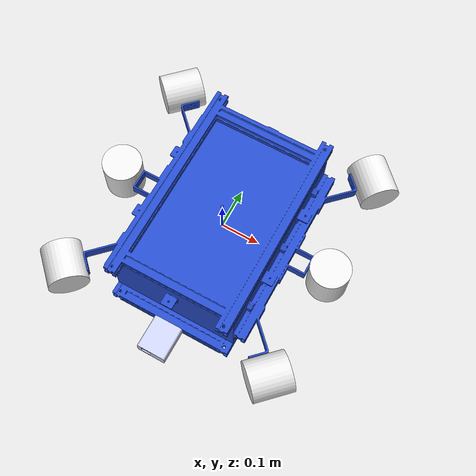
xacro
<?xml version="1.0" encoding="utf-8"?>

<robot name="vec6" xmlns:xacro="http://www.ros.org/wiki/xacro">

  <xacro:property name="cam_origin_offset" value="0 0 0"/>
  <xacro:property name="camera_dimensions" value="0.01 0.01 0.01"/>

  <xacro:property name="depth_origin_offset" value="0 0 0.11"/>
  <xacro:property name="depth_dimensions" value="0.005 0.005 0.002"/>

  <xacro:property name="imu_origin_offset" value="0 0 0"/>
  <xacro:property name="imu_dimensions" value="0.005 0.005 0.002"/>

  <!-- Dummy thruster links to define position of the thrusters -->
  <!-- Input parameters: Thruster name and pose of the joint -->
  <xacro:macro name="thruster_link" params="name xyz rpy">

    <link name="${name}">
			<visual>
			  <origin
				xyz="0 0 0"
				rpy="${rpy}" />
			  <geometry>
				<mesh
				  filename="package://uwv_description/meshes/vec6/vec6_thruster_visual.STL" />
			  </geometry>
			</visual>
			<collision>
			  <origin
				xyz="0 0 0"
				rpy="${rpy}" />
			  <geometry>
          <mesh
            filename="package://uwv_description/meshes/vec6/vec6_thruster_collision.STL" />
			  </geometry>
			</collision>
        <buoyancy>
          <compensation>
            1.0
          </compensation>
			</buoyancy>
    </link>

    <joint name="${name}_joint" type="fixed">
      <parent link="vec6_base_link"/>
      <child link="${name}"/>
      <origin rpy="0 0 0" xyz="${xyz}"/>
    </joint>

    <gazebo reference="${name}">
			<material>Gazebo/White</material>
		</gazebo>
  </xacro:macro>

  <!-- Gazebo plugin for buoyancy -->
  <gazebo>
	  <plugin name="freefloating_gazebo_control" filename="libfreefloating_gazebo_control.so">
      <switchService>switch</switchService>
      <updateRate>100</updateRate>
      <link>vec6_base_link</link>

      <!-- for each thruster, give the map to XYZ+RPY and the maximum effort -->
      <thruster>
        <effort>40</effort>
        <name>f_port</name>
        <map>-0.25 -0.25 0 0 0 -0.25</map>
      </thruster>
      <thruster>
        <effort>40</effort>
        <name>f_star</name>
        <map>0.25 -0.25 0 0 0 0.25</map>
      </thruster>
      <thruster>
        <effort>40</effort>
        <name>m_port</name>
        <map>0 0 -1 0 0 0</map>
        </thruster>
      <thruster>
        <effort>40</effort>
        <name>m_star</name>
        <map>>0 0 -1 0 0 0</map>
      </thruster>
      <thruster>
        <effort>40</effort>
        <name>b_port</name>
        <map>0.25 -0.25 0 0 0 -0.25</map>
      </thruster>
      <thruster>
        <effort>40</effort>
        <name>b_star</name>
        <map>-0.25 -0.25 0 0 0 0.25</map>
      </thruster>

	  </plugin>
  </gazebo>

  <!-- Ground truth publisher plugin -->
  <gazebo>
    <plugin name="p3d_base_controller" filename="libgazebo_ros_p3d.so">
      <alwaysOn>true</alwaysOn>
      <updateRate>50.0</updateRate>
      <bodyName>vec6_base_link</bodyName>
      <topicName>/vec6/sim_ground_truth</topicName>
      <gaussianNoise>0.0</gaussianNoise>
      <frameName>world</frameName>
      <xyzOffsets>0 0 0</xyzOffsets>
      <rpyOffsets>0 0 0</rpyOffsets>
    </plugin>
  </gazebo>

  <!-- ros_control plugin -->
  <gazebo>
    <plugin name="gazebo_ros_control" filename="libgazebo_ros_control.so">
      <robotNamespace>/vec6</robotNamespace>
    </plugin>
  </gazebo>

  <!-- Bot body -->
  <link name="body_link">
    <visual>
      <origin
          xyz="0 0 0"
          rpy="0 0 0" />
      <geometry>
          <mesh
            filename="package://uwv_description/meshes/vec6/vec6_body_visual.STL"/>
      </geometry>
    </visual>
    <collision>
      <origin
        xyz="0 0.235 -0.019804"
        rpy="1.5708 0 0" />
      <geometry>
        <mesh filename="package://uwv_description/meshes/vec6/vec6_body_collision.STL" />
      </geometry>
    </collision>
    <buoyancy>
        <compensation>1</compensation>
    </buoyancy>
  </link>

  <link name="vec6_base_link">
    <inertial>
      <origin
        xyz="0 0 0"
        rpy="1.5708 0 0" />
      <mass
        value="22" />
      <inertia
        ixx="0.64227"
        ixy="0.0022152"
        ixz="0"
        iyy="1.0029"
        iyz="0"
        izz="0.52067" />
    </inertial>
    <buoyancy>
      <compensation>1.01</compensation>
      <origin xyz="0 0 0.5"/>
      <limit radius="0.05"/>
      <damping xyz="50 50 50" rpy="10 10 10" type="linear"/>
    </buoyancy>
  </link>

  <joint name="body_link_joint" type="fixed">
    <parent link="vec6_base_link"/>
    <child link="body_link"/>
    <origin
          xyz="0 -0.235 0.019804"
          rpy="0 0 0" />
  </joint>

  <gazebo reference="body_link">
		<material>Gazebo/Blue</material>
  </gazebo>

  <!-- Actuators: Thrusters -->
  <xacro:thruster_link name="f_star" xyz="-0.2714 -0.28343 0.0123" rpy="1.5708 0 -0.7854" />
  <xacro:thruster_link name="f_port" xyz="0.2714 -0.28343 0.0123" rpy="-1.5708 0 -2.35619449019235"/>
  <xacro:thruster_link name="m_star" xyz="-0.28715 0.0070482 0.009" rpy="0 -1.5708 0"/>
  <xacro:thruster_link name="m_port" xyz="0.28715 0.0070482 0.009" rpy="0 -1.5708 3.1416"/>
  <xacro:thruster_link name="b_star" xyz="-0.2714 0.28343 0.0123" rpy="-1.5708 0 0.7854"/>
  <xacro:thruster_link name="b_port" xyz="0.2714 0.28343 0.0123" rpy="-1.5708 3.1416 -0.7854"/>

  <!-- Sensor: Front Camera -->
  <link name="f_cam">
    <visual>
      <origin
        xyz="-0.09 0.015 -0.0152"
        rpy="0 1.5708 0" />
      <geometry>
        <mesh
          filename="package://uwv_description/meshes/vec6/vec6_camera.STL" />
      </geometry>
      <material
        name="">
        <color
          rgba="0.792156862745098 0.819607843137255 0.933333333333333 1" />
      </material>
    </visual>
    <collision>
      <origin
        xyz="-0.09 0.015 -0.0152"
        rpy="0 1.5708 0" />
      <geometry>
        <mesh
          filename="package://uwv_description/meshes/vec6/vec6_camera.STL" />
      </geometry>
    </collision>
  </link>
  <joint name="f_cam_joint" type="fixed">
    <origin
      xyz="-0.015 -0.355 -0.07"
      rpy="0 0 -1.5708" />
    <parent
      link="vec6_base_link" />
    <child
      link="f_cam" />
    <axis
      xyz="0 0 0" />
  </joint>

  <!-- Front Camera: Plugin -->
  <gazebo reference="f_cam">
	 <material>Gazebo/Red</material>
   <sensor type="camera" name="f_cam">
   <update_rate>30.0</update_rate>
   <camera name="f_cam_head">
        <horizontal_fov>1.3</horizontal_fov>
        <image>
          <width>640</width>
          <height>480</height>
          <format>R8G8B8</format>
        </image>
        <clip>
          <near>0.1</near>
          <far>30</far>
        </clip>
        <noise>
          <type>gaussian</type>
          <!-- Noise is sampled independently per pixel on each frame.
               That pixel's noise value is added to each of its color
               channels, which at that point lie in the range [0,1]. -->
          <mean>0.0</mean>
          <stddev>0.007</stddev>
        </noise>
    </camera>
    <plugin name="camera_controller" filename="libgazebo_ros_camera.so">
        <alwaysOn>true</alwaysOn>
        <updateRate>30.0</updateRate>
        <cameraName>f_cam</cameraName>
        <imageTopicName>image_raw</imageTopicName>
        <cameraInfoTopicName>camera_info</cameraInfoTopicName>
        <frameName>camera_link</frameName>
        <hackBaseline>0.07</hackBaseline>
        <distortionK1>0.01</distortionK1>
        <distortionK2>0.02</distortionK2>
        <distortionK3>0.01</distortionK3>
        <distortionT1>0.03</distortionT1>
        <distortionT2>0.04</distortionT2>
      </plugin>
    </sensor>
  </gazebo>

  <!-- Sensor: Down Camera -->
  <link name="d_cam">
    <collision>
      <origin xyz="${cam_origin_offset}" rpy="0 0 0"/>
      <geometry>
        <box size="${camera_dimensions}"/>
      </geometry>
    </collision>
    <visual>
      <origin xyz="${cam_origin_offset}" rpy="0 0 0"/>
      <geometry>
        <box size="${camera_dimensions}"/>
      </geometry>
      <material name="red"/>
    </visual>
    <inertial>
      <mass value="1e-5" />
      <origin xyz="0 0 0" rpy="0 0 0"/>
      <inertia ixx="1e-6" ixy="0" ixz="0" iyy="1e-6" iyz="0" izz="1e-6" />
    </inertial>
  </link>
  <joint name="d_cam_joint" type="fixed">
    <origin
      xyz="0 -0.255 -0.092"
      rpy="0 1.5708 -1.5708" />
    <parent
      link="vec6_base_link" />
    <child
      link="d_cam" />
    <axis
      xyz="0 0 0" />
  </joint>

  <!-- Down Camera: Plugin -->
  <gazebo reference="d_cam">
	 <material>Gazebo/Red</material>
   <sensor type="camera" name="d_cam">
   <update_rate>30.0</update_rate>
   <camera name="d_cam_head">
        <horizontal_fov>1.3</horizontal_fov>
        <image>
          <width>640</width>
          <height>480</height>
          <format>R8G8B8</format>
        </image>
        <clip>
          <near>0.1</near>
          <far>30</far>
        </clip>
        <noise>
          <type>gaussian</type>
          <!-- Noise is sampled independently per pixel on each frame.
               That pixel's noise value is added to each of its color
               channels, which at that point lie in the range [0,1]. -->
          <mean>0.0</mean>
          <stddev>0.007</stddev>
        </noise>
    </camera>
    <plugin name="camera_controller" filename="libgazebo_ros_camera.so">
        <alwaysOn>true</alwaysOn>
        <updateRate>0.0</updateRate>
        <cameraName>d_cam</cameraName>
        <imageTopicName>image_raw</imageTopicName>
        <cameraInfoTopicName>camera_info</cameraInfoTopicName>
        <frameName>camera_link</frameName>
        <hackBaseline>0.07</hackBaseline>
        <distortionK1>0.01</distortionK1>
        <distortionK2>0.02</distortionK2>
        <distortionK3>0.01</distortionK3>
        <distortionT1>0.03</distortionT1>
        <distortionT2>0.04</distortionT2>
      </plugin>
    </sensor>
  </gazebo>

  <!-- Depth sensor -->
  <link name="depth_sensor">
    <collision>
      <origin xyz="0 0 0" rpy="0 0 0"/>
      <geometry>
        <box size="${depth_dimensions}"/>
      </geometry>
    </collision>
    <visual>
      <origin xyz="0 0 0" rpy="0 0 0"/>
      <geometry>
        <box size="${depth_dimensions}"/>
      </geometry>
      <material name="blue"/>
    </visual>
    <inertial>
      <mass value="1e-5" />
      <origin xyz="0 0 0" rpy="0 0 0"/>
      <inertia ixx="1e-6" ixy="0" ixz="0" iyy="1e-6" iyz="0" izz="1e-6" />
    </inertial>
  </link>
  <joint name="depth_sensor_joint" type="fixed">
    <origin xyz="${depth_origin_offset}" rpy="0 0 0"/>
    <parent link="vec6_base_link"/>
    <child link="depth_sensor"/>
  </joint>
  <gazebo reference="depth_sensor">
	  <material>Gazebo/Green</material>
  </gazebo>

  <!-- Depth: Plugin -->
  <gazebo>
	  <plugin name='depth_plugin' filename='libplugin_depth.so'>
      <bodyName>depth_sensor</bodyName>
      <depthTopicName>/vec6/sim_depth</depthTopicName>
      <noise>0.01</noise>
	  </plugin>
  </gazebo>

  <!-- IMU -->
  <link name="imu_link">
    <collision>
      <origin xyz="0 0 0" rpy="0 0 0"/>
      <geometry>
		<box size="${imu_dimensions}"/>
      </geometry>
    </collision>
    <visual>
      <origin xyz="0 0 0" rpy="0 0 0"/>
      <geometry>
		<box size="${imu_dimensions}"/>
      </geometry>
    </visual>
    <inertial>
      <mass value="1e-5" />
      <origin xyz="0 0 0" rpy="0 0 0"/>
      <inertia ixx="1e-6" ixy="0" ixz="0" iyy="1e-6" iyz="0" izz="1e-6" />
    </inertial>
  </link>
  <joint name="imu_joint" type="fixed">
    <origin xyz="${imu_origin_offset}" rpy="0 0 -1.5708"/>
    <parent link="vec6_base_link"/>
    <child link="imu_link"/>
  </joint>
  <gazebo reference="imu_link">
	  <material>Gazebo/Purple</material>
  </gazebo>

  <!-- IMU: Plugin -->
  <gazebo>
    <plugin name="imu_plugin" filename="libgazebo_ros_imu.so">
      <alwaysOn>true</alwaysOn>
      <bodyName>imu_link</bodyName>
      <topicName>/vec6/sim_imu</topicName>
      <serviceName>imu_service</serviceName>
      <gaussianNoise>0.01</gaussianNoise>
      <updateRate>30.0</updateRate>
    </plugin>
  </gazebo>

</robot>
